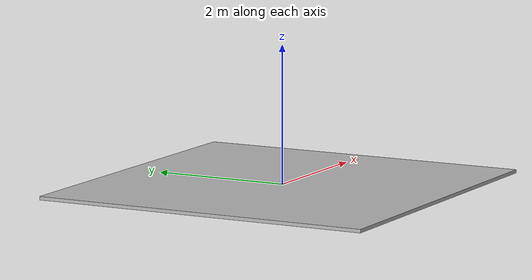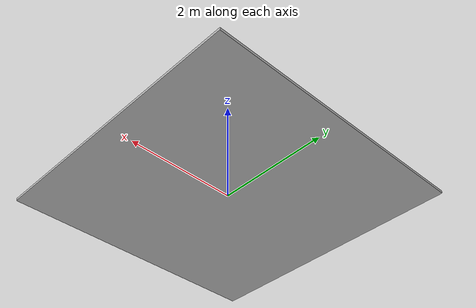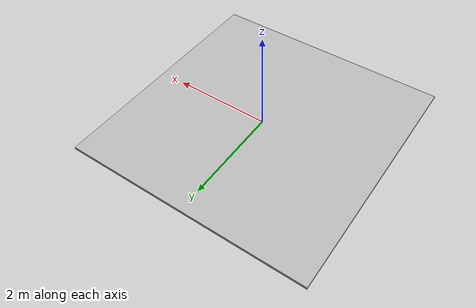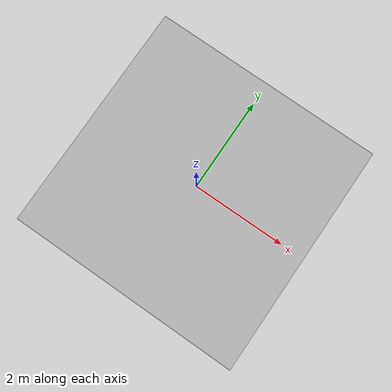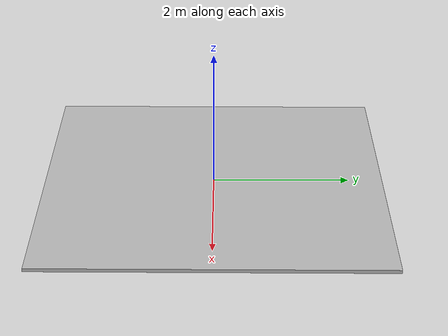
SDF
<?xml version='1.0'?>
<sdf version='1.6'>
  <model name='tapete_borracha'>
    <link name='link_0'>
      <inertial>
        <mass>2.58424</mass>
        <inertia>
          <ixx>16.3966</ixx>
          <ixy>0</ixy>
          <ixz>0</ixz>
          <iyy>25.0206</iyy>
          <iyz>0</iyz>
          <izz>41.4169</izz>
        </inertia>
        <pose frame=''>0 0 0 0 -0 0</pose>
      </inertial>
      <pose frame=''>0 -0 0 0 -0 0</pose>
      <visual name='visual'>
        <pose frame=''>0 0 0 0 -0 0</pose>
        <geometry>
          <box>
            <size>5.0 5.0 0.05</size>
          </box>
        </geometry>
        <material>
          <script>
            <uri>models://tapete_borracha/materials/scripts</uri>
            <uri>models://tapete_borracha/materials/texture</uri>
            <name>tapeteMat/Diffuse</name>
          </script>
        </material>
      </visual>
      <collision name='collision'>
        <laser_retro>0</laser_retro>
        <max_contacts>10</max_contacts>
        <pose frame=''>0 0 0 0 -0 0</pose>
        <geometry>
          <box>
            <size>5.0 5.0 0.05</size>
          </box>
        </geometry>
        <surface>
          <friction>
            <ode>
              <mu>0.8</mu>
              <mu2>0.8</mu2>
              <fdir1>0 0 0</fdir1>
              <slip1>0</slip1>
              <slip2>0</slip2>
            </ode>
            <torsional>
              <coefficient>1</coefficient>
              <patch_radius>0</patch_radius>
              <surface_radius>0</surface_radius>
              <use_patch_radius>1</use_patch_radius>
              <ode>
                <slip>0</slip>
              </ode>
            </torsional>
          </friction>
          <bounce>
            <restitution_coefficient>0</restitution_coefficient>
            <threshold>1e+06</threshold>
          </bounce>
          <contact>
            <collide_without_contact>0</collide_without_contact>
            <collide_without_contact_bitmask>1</collide_without_contact_bitmask>
            <collide_bitmask>1</collide_bitmask>
            <ode>
              <soft_cfm>0</soft_cfm>
              <soft_erp>0.2</soft_erp>
              <kp>1e+13</kp>
              <kd>1</kd>
              <max_vel>0.01</max_vel>
              <min_depth>0</min_depth>
            </ode>
            <bullet>
              <split_impulse>1</split_impulse>
              <split_impulse_penetration_threshold>-0.01</split_impulse_penetration_threshold>
              <soft_cfm>0</soft_cfm>
              <soft_erp>0.2</soft_erp>
              <kp>1e+13</kp>
              <kd>1</kd>
            </bullet>
          </contact>
        </surface>
      </collision>
    </link>
    <static>0</static>
    <allow_auto_disable>1</allow_auto_disable>
  </model>
</sdf>
